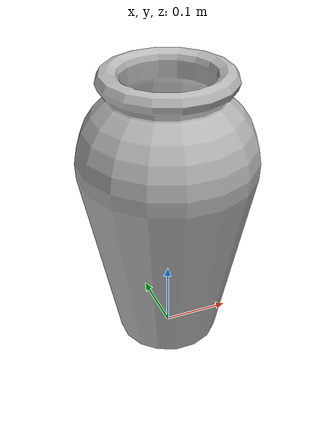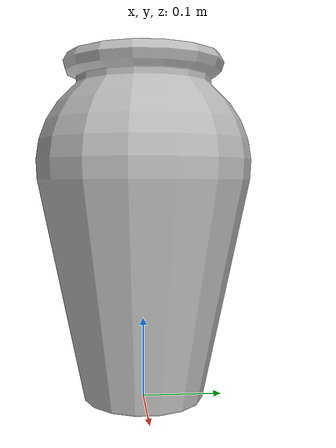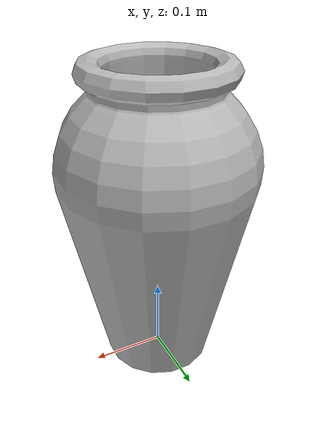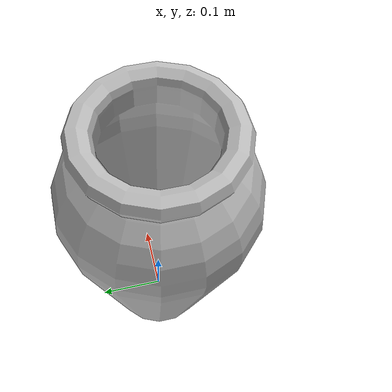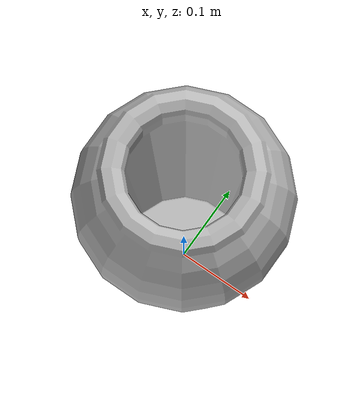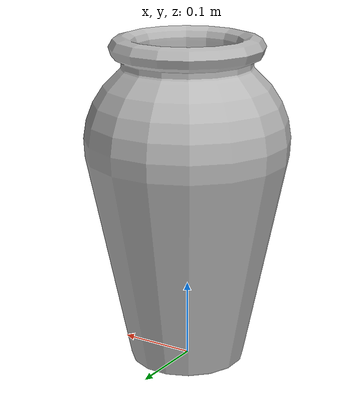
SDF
<?xml version='1.0'?>
<sdf version='1.4'>
  <model name='529'>
    <pose>0 0 0 0 0 0</pose>
    <static>true</static>
    <link name='link'>
      <collision name='collision'>
        <pose>0 0 0 0 0 0</pose>
        <geometry>
          <box>
            <size>0.26 0.26 2</size>
          </box>
        </geometry>
      </collision>
      <visual name='visual'>
        <pose>0 0 0 0 0 0</pose>
        <geometry>
          <mesh><uri>model://529/529.dae</uri></mesh>
        </geometry>
      </visual>
    </link>
  </model>
</sdf>
